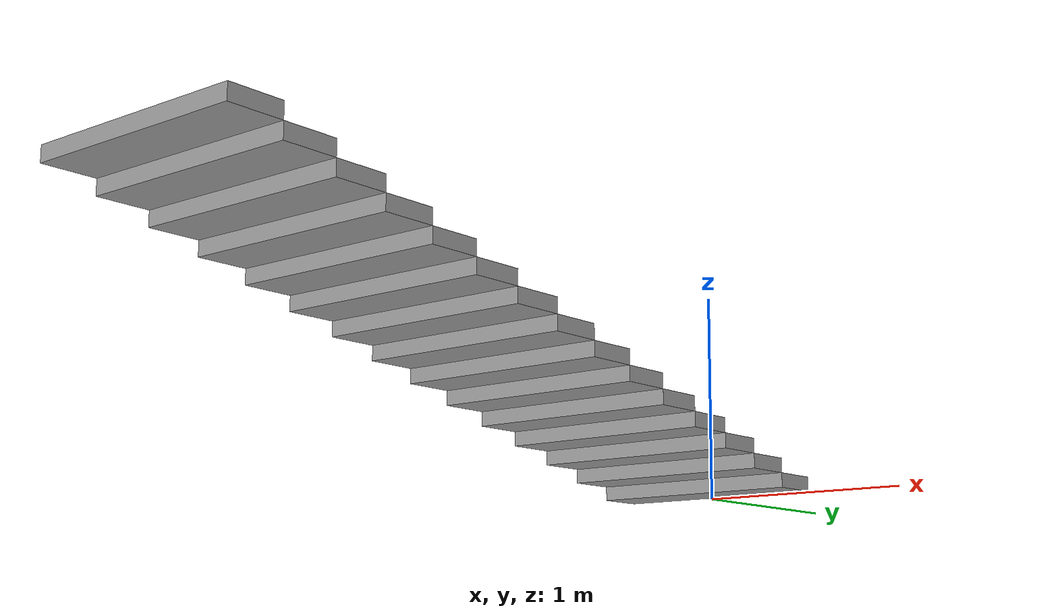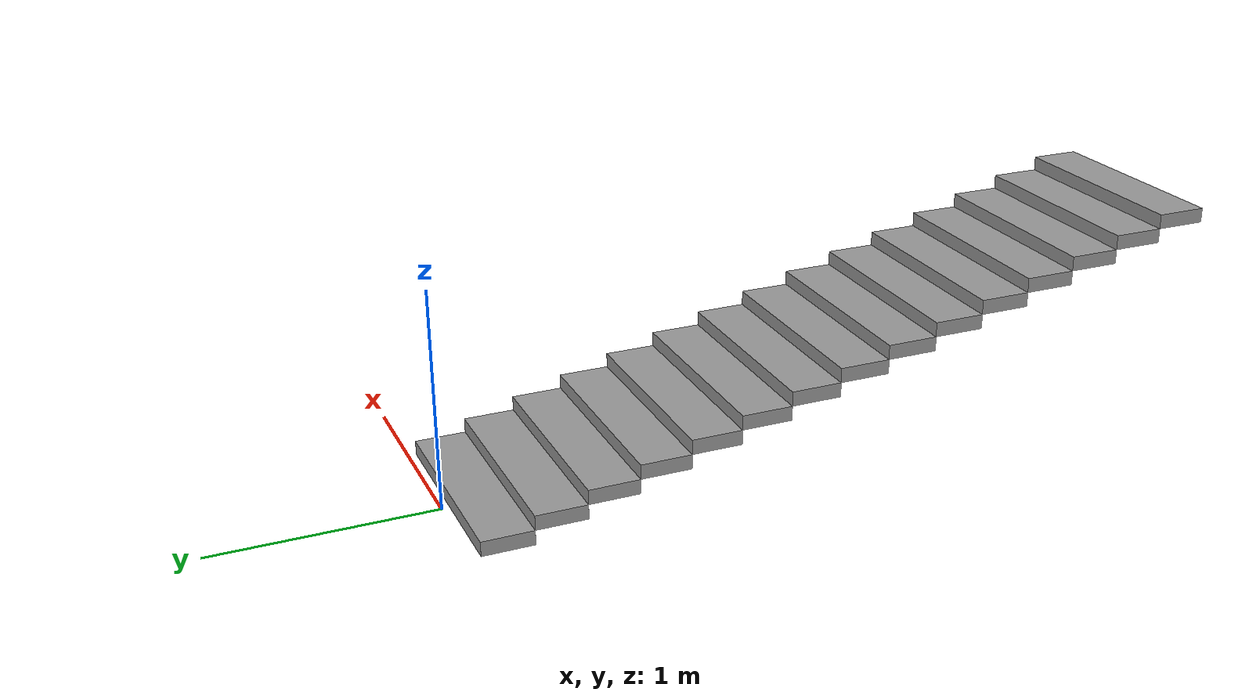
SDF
<?xml version='1.0'?>
<sdf version='1.7'>
  <model name='stair.world'>
    <pose>0.051419 -1.76686 0 0 -0 0</pose>
    <link name='Stairs_0'>
      <visual name='Stairs_0_Visual_0'>
        <pose>0 1.61647 0.033333 0 -0 0</pose>
        <geometry>
          <box>
            <size>1 0.233333 0.066667</size>
          </box>
        </geometry>
        <material>
          <script>
            <uri>file://media/materials/scripts/gazebo.material</uri>
            <name>Gazebo/Grey</name>
          </script>
          <ambient>1 1 1 1</ambient>
        </material>
        <meta>
          <layer>0</layer>
        </meta>
      </visual>
      <collision name='Stairs_0_Collision_0'>
        <geometry>
          <box>
            <size>1 0.233333 0.066667</size>
          </box>
        </geometry>
        <pose>0 1.61647 0.033333 0 -0 0</pose>
      </collision>
      <visual name='Stairs_0_Visual_1'>
        <pose>0 1.38314 0.1 0 -0 0</pose>
        <geometry>
          <box>
            <size>1 0.233333 0.066667</size>
          </box>
        </geometry>
        <material>
          <script>
            <uri>file://media/materials/scripts/gazebo.material</uri>
            <name>Gazebo/Grey</name>
          </script>
          <ambient>1 1 1 1</ambient>
        </material>
        <meta>
          <layer>0</layer>
        </meta>
      </visual>
      <collision name='Stairs_0_Collision_1'>
        <geometry>
          <box>
            <size>1 0.233333 0.066667</size>
          </box>
        </geometry>
        <pose>0 1.38314 0.1 0 -0 0</pose>
      </collision>
      <visual name='Stairs_0_Visual_2'>
        <pose>0 1.1498 0.166667 0 -0 0</pose>
        <geometry>
          <box>
            <size>1 0.233333 0.066667</size>
          </box>
        </geometry>
        <material>
          <script>
            <uri>file://media/materials/scripts/gazebo.material</uri>
            <name>Gazebo/Grey</name>
          </script>
          <ambient>1 1 1 1</ambient>
        </material>
        <meta>
          <layer>0</layer>
        </meta>
      </visual>
      <collision name='Stairs_0_Collision_2'>
        <geometry>
          <box>
            <size>1 0.233333 0.066667</size>
          </box>
        </geometry>
        <pose>0 1.1498 0.166667 0 -0 0</pose>
      </collision>
      <visual name='Stairs_0_Visual_3'>
        <pose>0 0.91647 0.233333 0 -0 0</pose>
        <geometry>
          <box>
            <size>1 0.233333 0.066667</size>
          </box>
        </geometry>
        <material>
          <script>
            <uri>file://media/materials/scripts/gazebo.material</uri>
            <name>Gazebo/Grey</name>
          </script>
          <ambient>1 1 1 1</ambient>
        </material>
        <meta>
          <layer>0</layer>
        </meta>
      </visual>
      <collision name='Stairs_0_Collision_3'>
        <geometry>
          <box>
            <size>1 0.233333 0.066667</size>
          </box>
        </geometry>
        <pose>0 0.91647 0.233333 0 -0 0</pose>
      </collision>
      <visual name='Stairs_0_Visual_4'>
        <pose>0 0.683136 0.3 0 -0 0</pose>
        <geometry>
          <box>
            <size>1 0.233333 0.066667</size>
          </box>
        </geometry>
        <material>
          <script>
            <uri>file://media/materials/scripts/gazebo.material</uri>
            <name>Gazebo/Grey</name>
          </script>
          <ambient>1 1 1 1</ambient>
        </material>
        <meta>
          <layer>0</layer>
        </meta>
      </visual>
      <collision name='Stairs_0_Collision_4'>
        <geometry>
          <box>
            <size>1 0.233333 0.066667</size>
          </box>
        </geometry>
        <pose>0 0.683136 0.3 0 -0 0</pose>
      </collision>
      <visual name='Stairs_0_Visual_5'>
        <pose>0 0.449803 0.366667 0 -0 0</pose>
        <geometry>
          <box>
            <size>1 0.233333 0.066667</size>
          </box>
        </geometry>
        <material>
          <script>
            <uri>file://media/materials/scripts/gazebo.material</uri>
            <name>Gazebo/Grey</name>
          </script>
          <ambient>1 1 1 1</ambient>
        </material>
        <meta>
          <layer>0</layer>
        </meta>
      </visual>
      <collision name='Stairs_0_Collision_5'>
        <geometry>
          <box>
            <size>1 0.233333 0.066667</size>
          </box>
        </geometry>
        <pose>0 0.449803 0.366667 0 -0 0</pose>
      </collision>
      <visual name='Stairs_0_Visual_6'>
        <pose>0 0.21647 0.433333 0 -0 0</pose>
        <geometry>
          <box>
            <size>1 0.233333 0.066667</size>
          </box>
        </geometry>
        <material>
          <script>
            <uri>file://media/materials/scripts/gazebo.material</uri>
            <name>Gazebo/Grey</name>
          </script>
          <ambient>1 1 1 1</ambient>
        </material>
        <meta>
          <layer>0</layer>
        </meta>
      </visual>
      <collision name='Stairs_0_Collision_6'>
        <geometry>
          <box>
            <size>1 0.233333 0.066667</size>
          </box>
        </geometry>
        <pose>0 0.21647 0.433333 0 -0 0</pose>
      </collision>
      <visual name='Stairs_0_Visual_7'>
        <pose>0 -0.016864 0.5 0 -0 0</pose>
        <geometry>
          <box>
            <size>1 0.233333 0.066667</size>
          </box>
        </geometry>
        <material>
          <script>
            <uri>file://media/materials/scripts/gazebo.material</uri>
            <name>Gazebo/Grey</name>
          </script>
          <ambient>1 1 1 1</ambient>
        </material>
        <meta>
          <layer>0</layer>
        </meta>
      </visual>
      <collision name='Stairs_0_Collision_7'>
        <geometry>
          <box>
            <size>1 0.233333 0.066667</size>
          </box>
        </geometry>
        <pose>0 -0.016864 0.5 0 -0 0</pose>
      </collision>
      <visual name='Stairs_0_Visual_8'>
        <pose>0 -0.250197 0.566667 0 -0 0</pose>
        <geometry>
          <box>
            <size>1 0.233333 0.066667</size>
          </box>
        </geometry>
        <material>
          <script>
            <uri>file://media/materials/scripts/gazebo.material</uri>
            <name>Gazebo/Grey</name>
          </script>
          <ambient>1 1 1 1</ambient>
        </material>
        <meta>
          <layer>0</layer>
        </meta>
      </visual>
      <collision name='Stairs_0_Collision_8'>
        <geometry>
          <box>
            <size>1 0.233333 0.066667</size>
          </box>
        </geometry>
        <pose>0 -0.250197 0.566667 0 -0 0</pose>
      </collision>
      <visual name='Stairs_0_Visual_9'>
        <pose>0 -0.48353 0.633333 0 -0 0</pose>
        <geometry>
          <box>
            <size>1 0.233333 0.066667</size>
          </box>
        </geometry>
        <material>
          <script>
            <uri>file://media/materials/scripts/gazebo.material</uri>
            <name>Gazebo/Grey</name>
          </script>
          <ambient>1 1 1 1</ambient>
        </material>
        <meta>
          <layer>0</layer>
        </meta>
      </visual>
      <collision name='Stairs_0_Collision_9'>
        <geometry>
          <box>
            <size>1 0.233333 0.066667</size>
          </box>
        </geometry>
        <pose>0 -0.48353 0.633333 0 -0 0</pose>
      </collision>
      <visual name='Stairs_0_Visual_10'>
        <pose>0 -0.716864 0.7 0 -0 0</pose>
        <geometry>
          <box>
            <size>1 0.233333 0.066667</size>
          </box>
        </geometry>
        <material>
          <script>
            <uri>file://media/materials/scripts/gazebo.material</uri>
            <name>Gazebo/Grey</name>
          </script>
          <ambient>1 1 1 1</ambient>
        </material>
        <meta>
          <layer>0</layer>
        </meta>
      </visual>
      <collision name='Stairs_0_Collision_10'>
        <geometry>
          <box>
            <size>1 0.233333 0.066667</size>
          </box>
        </geometry>
        <pose>0 -0.716864 0.7 0 -0 0</pose>
      </collision>
      <visual name='Stairs_0_Visual_11'>
        <pose>0 -0.950197 0.766667 0 -0 0</pose>
        <geometry>
          <box>
            <size>1 0.233333 0.066667</size>
          </box>
        </geometry>
        <material>
          <script>
            <uri>file://media/materials/scripts/gazebo.material</uri>
            <name>Gazebo/Grey</name>
          </script>
          <ambient>1 1 1 1</ambient>
        </material>
        <meta>
          <layer>0</layer>
        </meta>
      </visual>
      <collision name='Stairs_0_Collision_11'>
        <geometry>
          <box>
            <size>1 0.233333 0.066667</size>
          </box>
        </geometry>
        <pose>0 -0.950197 0.766667 0 -0 0</pose>
      </collision>
      <visual name='Stairs_0_Visual_12'>
        <pose>0 -1.18353 0.833333 0 -0 0</pose>
        <geometry>
          <box>
            <size>1 0.233333 0.066667</size>
          </box>
        </geometry>
        <material>
          <script>
            <uri>file://media/materials/scripts/gazebo.material</uri>
            <name>Gazebo/Grey</name>
          </script>
          <ambient>1 1 1 1</ambient>
        </material>
        <meta>
          <layer>0</layer>
        </meta>
      </visual>
      <collision name='Stairs_0_Collision_12'>
        <geometry>
          <box>
            <size>1 0.233333 0.066667</size>
          </box>
        </geometry>
        <pose>0 -1.18353 0.833333 0 -0 0</pose>
      </collision>
      <visual name='Stairs_0_Visual_13'>
        <pose>0 -1.41686 0.9 0 -0 0</pose>
        <geometry>
          <box>
            <size>1 0.233333 0.066667</size>
          </box>
        </geometry>
        <material>
          <script>
            <uri>file://media/materials/scripts/gazebo.material</uri>
            <name>Gazebo/Grey</name>
          </script>
          <ambient>1 1 1 1</ambient>
        </material>
        <meta>
          <layer>0</layer>
        </meta>
      </visual>
      <collision name='Stairs_0_Collision_13'>
        <geometry>
          <box>
            <size>1 0.233333 0.066667</size>
          </box>
        </geometry>
        <pose>0 -1.41686 0.9 0 -0 0</pose>
      </collision>
      <visual name='Stairs_0_Visual_14'>
        <pose>0 -1.6502 0.966667 0 -0 0</pose>
        <geometry>
          <box>
            <size>1 0.233333 0.066667</size>
          </box>
        </geometry>
        <material>
          <script>
            <uri>file://media/materials/scripts/gazebo.material</uri>
            <name>Gazebo/Grey</name>
          </script>
          <ambient>1 1 1 1</ambient>
        </material>
        <meta>
          <layer>0</layer>
        </meta>
      </visual>
      <collision name='Stairs_0_Collision_14'>
        <geometry>
          <box>
            <size>1 0.233333 0.066667</size>
          </box>
        </geometry>
        <pose>0 -1.6502 0.966667 0 -0 0</pose>
      </collision>
    </link>
    <static>1</static>
  </model>
</sdf>
